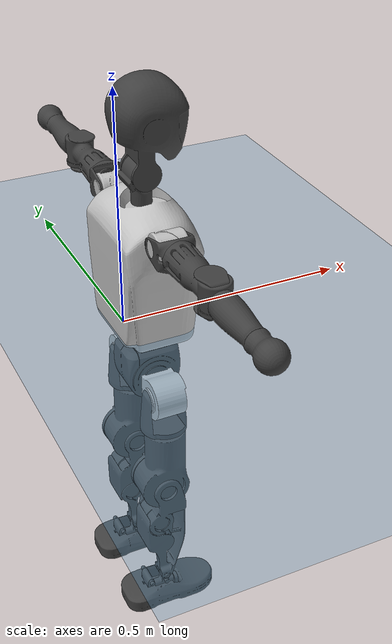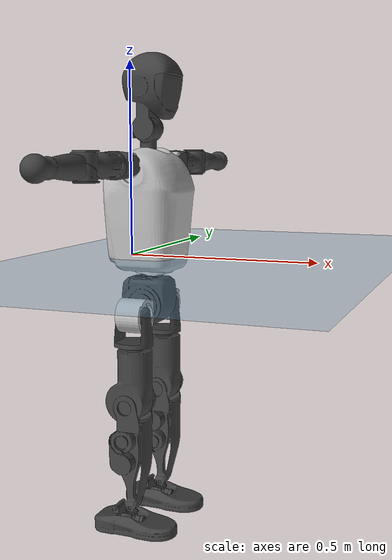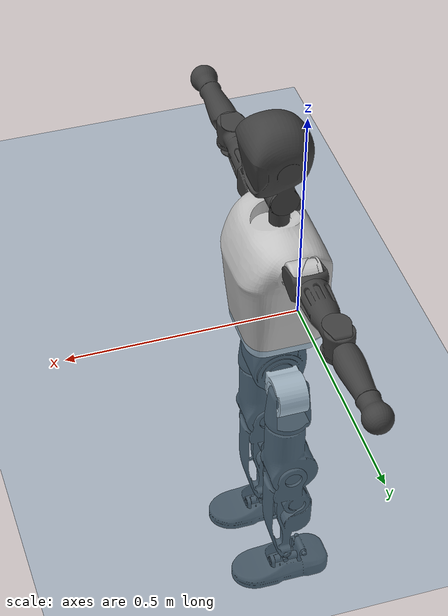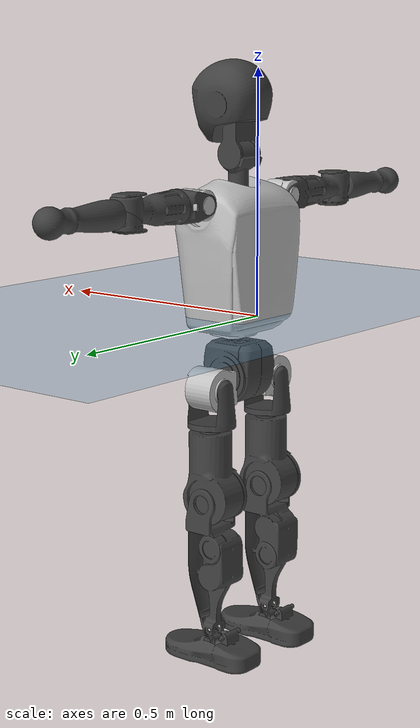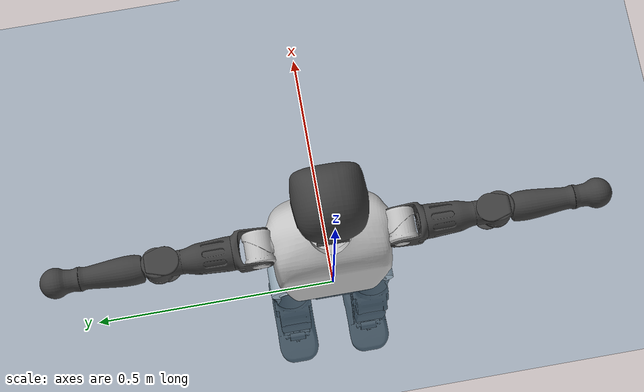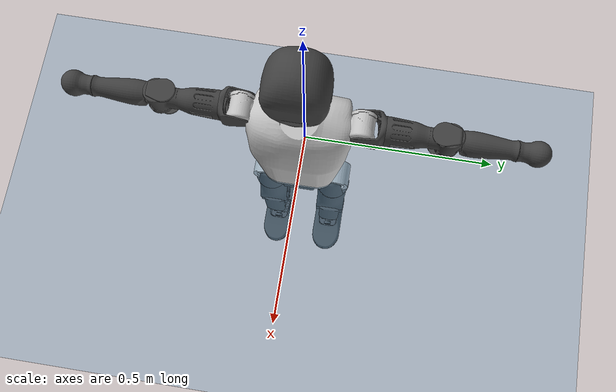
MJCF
<mujoco model="T1">
  <compiler angle="radian" assetdir="assets" balanceinertia="true" inertiafromgeom="false"/>

  <option timestep="0.005" density="1.2" viscosity="2e-05"/>

  <size nkey="1"/>

  <visual>
    <quality shadowsize="8192"/>
    <map shadowclip="0.5"/>
  </visual>

  <default>
    <default class="/">
      <joint armature="0.01" damping="0.01" frictionloss="0.1"/>
      <geom contype="0" conaffinity="0" group="1" solref="-1000 -80"/>
      <site size="0.01 0.005 0.005" group="5"/>
      <general forcelimited="true" biastype="affine" gainprm="25" biasprm="0 -25 -0.6"/>
      <default class="t1">
        <geom rgba="0.25 0.25 0.25 1"/>
        <default class="visual">
          <geom type="mesh" group="2"/>
        </default>
        <default class="collision">
          <geom group="3"/>
        </default>
        <default class="foot">
          <geom size="0.1115 0.05 0.015" type="box" condim="6" group="4" priority="1" solimp="0.015 1 0.015"/>
        </default>
        <default class="reward_collision_sphere">
          <geom group="5" rgba="1 0 0 1"/>
        </default>
      </default>
    </default>
  </default>

  <asset>
    <texture type="skybox" colorspace="auto" name="//unnamed_texture_0" builtin="gradient" rgb1="0.95 0.95 0.95" rgb2="0.95 0.95 0.95" width="100" height="600"/>
    <texture type="2d" colorspace="auto" name="texplane" builtin="checker" rgb1="0.345 0.575 0.748" rgb2="0.345 0.575 0.748" markrgb="1 1 1" width="512" height="512"/>
    <material name="MatPlane" class="/" texture="texplane" texuniform="true" texrepeat="2 2" specular="0.9"/>
    <mesh name="Trunk" class="/" file="Trunk.stl"/>
    <mesh name="H1" class="/" file="H1.stl"/>
    <mesh name="H2" class="/" file="H2.stl"/>
    <mesh name="AL1" class="/" file="AL1.stl"/>
    <mesh name="AL2" class="/" file="AL2.stl"/>
    <mesh name="AL3" class="/" file="AL3.stl"/>
    <mesh name="left_hand_link" class="/" file="left_hand_link.stl"/>
    <mesh name="AR1" class="/" file="AR1.stl"/>
    <mesh name="AR2" class="/" file="AR2.stl"/>
    <mesh name="AR3" class="/" file="AR3.stl"/>
    <mesh name="right_hand_link" class="/" file="right_hand_link.stl"/>
    <mesh name="Waist" class="/" file="Waist.stl"/>
    <mesh name="Hip_Pitch_Left" class="/" file="Hip_Pitch_Left.stl"/>
    <mesh name="Hip_Roll_Left" class="/" file="Hip_Roll_Left.stl"/>
    <mesh name="Hip_Yaw_Left" class="/" file="Hip_Yaw_Left.stl"/>
    <mesh name="Shank_Left" class="/" file="Shank_Left.stl"/>
    <mesh name="Ankle_Cross_Left" class="/" file="Ankle_Cross_Left.stl"/>
    <mesh name="left_foot_link" class="/" file="left_foot_link.stl"/>
    <mesh name="Hip_Pitch_Right" class="/" file="Hip_Pitch_Right.stl"/>
    <mesh name="Hip_Roll_Right" class="/" file="Hip_Roll_Right.stl"/>
    <mesh name="Hip_Yaw_Right" class="/" file="Hip_Yaw_Right.stl"/>
    <mesh name="Shank_Right" class="/" file="Shank_Right.stl"/>
    <mesh name="Ankle_Cross_Right" class="/" file="Ankle_Cross_Right.stl"/>
    <mesh name="right_foot_link" class="/" file="right_foot_link.stl"/>
  </asset>

  <worldbody>
    <geom name="floor" class="/" size="100 100 0.125" type="plane" group="0" material="MatPlane"/>
    <light name="toplight_shadow" class="/" pos="0 0 5" dir="0.0990148 0.0990148 -0.990148" type="directional" ambient="0.04 0.04 0.04" diffuse="0.55 0.55 0.55" specular="0.12 0.12 0.12"/>
    <light name="toplight_fill" class="/" pos="0 0 5" dir="0.0990148 0.0990148 -0.990148" type="directional" castshadow="false" ambient="0.04 0.04 0.04" diffuse="0.3 0.3 0.3" specular="0.08 0.08 0.08"/>
    <body name="trunk" childclass="t1" pos="0.000164343 -4.29829e-05 4.29338e-05" quat="1 -6.05956e-05 -0.000139857 -0.000145123">
      <inertial pos="0.0423763 -0.000904309 0.113592" quat="0.999989 0.000510483 -0.00445542 0.00121013" mass="8.92948" diaginertia="0.0271502 0.0406596 0.0804102"/>
      <joint name="//unnamed_joint_0" type="free" armature="0" damping="0" frictionloss="0"/>
      <geom name="//unnamed_geom_1" class="visual" rgba="0.76 0.76 0.76 1" mesh="Trunk"/>
      <geom name="//unnamed_geom_2" class="collision" size="0.0685843 0.0914457 0.137169" pos="0.0469868 0 0.129532" type="box"/>
      <geom name="//unnamed_geom_3" class="reward_collision_sphere" size="0.105163" pos="0.0469868 0 0.107943"/>
      <geom name="//unnamed_geom_4" class="reward_collision_sphere" size="0.0137169" pos="0.0469868 0.0748705 0"/>
      <geom name="//unnamed_geom_5" class="reward_collision_sphere" size="0.0137169" pos="0.0469868 -0.0748705 0"/>
      <geom name="//unnamed_geom_6" class="reward_collision_sphere" size="0.0137169" pos="0.0469868 0.0942488 0.194297"/>
      <geom name="//unnamed_geom_7" class="reward_collision_sphere" size="0.0137169" pos="0.0469868 -0.0942488 0.194297"/>
      <site name="imu" pos="0.00711361 -0.0031813 -0.00422252" size="0.00914457"/>
      <camera name="track" pos="0 -1.76166 0" quat="0.707107 0.707107 0 0" mode="trackcom"/>
      <camera name="ego_camera" pos="0.0955398 0 0.45336" quat="-0.5 -0.5 0.5 0.5"/>
      <body name="H1" pos="0.0494963 0.000501437 0.261942" quat="1 0.000450621 -0.000227346 1.97057e-05">
        <inertial pos="-0.00152526 -0.00166538 0.0615815" quat="0.763847 -0.0135449 0.0031326 0.645248" mass="0.344524" diaginertia="7.16964e-05 0.000118727 0.000222508"/>
        <joint name="AAHead_yaw" pos="0 0 0" axis="1.54726e-05 5.1138e-05 1" stiffness="0.000546518" range="-1.58611 1.55657" armature="0.00919898" damping="0.0092925" frictionloss="0.0920625"/>
        <geom name="//unnamed_geom_8" class="visual" mesh="H1"/>
        <body name="H2" pos="-0.000498944 -0.00114592 0.0664437" quat="1 0.000133188 2.03329e-05 -5.98573e-05">
          <inertial pos="0.00671849 0.00168261 0.105776" quat="0.988741 0.106233 -0.0730302 -0.0759757" mass="0.48917" diaginertia="0.000592112 0.00102244 0.00250097"/>
          <joint name="Head_pitch" pos="0 0 0" axis="-8.49586e-05 -1 1.14134e-06" range="-1.21854 0.339425" armature="0.0088791" damping="0.00835934" frictionloss="0.0917946"/>
          <geom name="//unnamed_geom_9" class="visual" mesh="H2"/>
          <geom name="//unnamed_geom_10" class="collision" size="0.0731566" pos="0.00783113 0 0.118737"/>
          <geom name="//unnamed_geom_11" class="reward_collision_sphere" size="0.0823012" pos="0.0156623 0 0.107943"/>
        </body>
      </body>
      <body name="AL1" pos="0.0464851 0.0943227 0.237413" quat="1 -0.000175694 0.000636972 -4.51698e-05">
        <inertial pos="-0.00165363 0.0384306 0.00089415" quat="0.502995 0.494713 -0.508249 0.493902" mass="0.404017" diaginertia="0.000399848 0.000685652 0.00042384"/>
        <joint name="Left_Shoulder_Pitch" pos="0 0 0" axis="-3.47089e-05 0.999998 -0.00181193" range="-3.32286 1.23276" armature="0.00931433" damping="0.0107864" frictionloss="0.0918597"/>
        <geom name="//unnamed_geom_12" class="visual" rgba="0.76 0.76 0.76 1" mesh="AL1"/>
        <body name="AL2" pos="0.000256573 0.0433518 1.84285e-06" quat="1 0.000182887 0.000833515 7.4538e-05">
          <inertial pos="0.00171365 0.03372 -8.65137e-05" quat="0.489702 0.510208 -0.488765 0.510871" mass="0.126367" diaginertia="0.000119367 0.000185426 0.000260781"/>
          <joint name="Left_Shoulder_Roll" pos="0 0 0" axis="-0.99999 0.00154997 -0.00421047" range="-1.55989 1.73224" armature="0.00871654" damping="0.00352153" frictionloss="0.0944395"/>
          <geom name="//unnamed_geom_13" class="visual" mesh="AL2"/>
          <body name="AL3" pos="-0.000258924 0.0546586 5.04641e-05" quat="1 0.000583313 -0.000254233 0.000175398">
            <inertial pos="0.000264958 0.0752648 -0.000246733" quat="0.706125 0.708086 0.000626768 0.000907601" mass="0.789913" diaginertia="0.00383392 0.00684886 0.000931696"/>
            <joint name="Left_Elbow_Pitch" pos="0 0 0" axis="-0.00113719 -0.999999 0.000873133" range="-2.25444 2.26358" armature="0.00898535" damping="0.0109594" frictionloss="0.0905574"/>
            <geom name="//unnamed_geom_14" class="visual" mesh="AL3"/>
            <geom name="//unnamed_geom_15" class="collision" size="0.0274337 0.0685843" pos="0 0.0440415 0" quat="0.707105 0.707108 0 0" type="cylinder"/>
            <geom name="//unnamed_geom_16" class="reward_collision_sphere" size="0.0329205"/>
            <body name="left_hand_link" pos="0.000413136 0.131371 0.000179273" quat="1 0.000178221 0.000216002 -0.00041111">
              <inertial pos="-0.000144191 0.0974291 -0.000307858" quat="0.71003 0.70417 0.00147273 0.000451719" mass="0.245315" diaginertia="0.00232715 0.00420791 0.000312355"/>
              <joint name="Left_Elbow_Yaw" pos="0 0 0" axis="0.00110632 -0.00580081 0.999983" range="-2.44784 0.000336301" armature="0.00920735" damping="0.013303" frictionloss="0.0979032"/>
              <geom name="//unnamed_geom_17" class="visual" mesh="left_hand_link"/>
              <geom name="//unnamed_geom_18" class="collision" size="0.0274337 0.080015" pos="0 0.114508 0" quat="0.707105 0.707108 0 0" type="cylinder"/>
              <geom name="//unnamed_geom_19" class="reward_collision_sphere" size="0.0457229"/>
              <geom name="//unnamed_geom_20" class="reward_collision_sphere" size="0.032006" pos="0 0.0968912 0"/>
              <geom name="//unnamed_geom_21" class="reward_collision_sphere" size="0.032006" pos="0 0.189378 0"/>
            </body>
          </body>
        </body>
      </body>
      <body name="AR1" pos="0.044021 -0.0928613 0.236298" quat="1 -2.90064e-05 0.000672484 -2.96347e-05">
        <inertial pos="-0.000745772 -0.0399471 0.00049768" quat="0.504248 0.495678 -0.504296 0.495705" mass="0.398706" diaginertia="0.000399522 0.000682081 0.000428734"/>
        <joint name="Right_Shoulder_Pitch" pos="0 0 0" axis="0.00146756 -0.999975 0.00694776" stiffness="0.00673165" range="-1.20451 3.29874" armature="0.00928087" damping="0.00974757" frictionloss="0.0914318"/>
        <geom name="//unnamed_geom_22" class="visual" rgba="0.76 0.76 0.76 1" mesh="AR1"/>
        <body name="AR2" pos="-0.00147009 -0.040405 -0.000312753" quat="1 0.000328582 -7.3124e-05 -1.89173e-05">
          <inertial pos="0.00369758 -0.0342464 0.000841365" quat="0.511582 0.491577 -0.510069 0.486278" mass="0.121955" diaginertia="0.000115816 0.000177933 0.000256728"/>
          <joint name="Right_Shoulder_Roll" pos="0 0 0" axis="-0.999974 0.00715408 0.000828607" range="-1.75829 1.55116" armature="0.00902141" damping="0.00624335" frictionloss="0.0876199"/>
          <geom name="//unnamed_geom_23" class="visual" mesh="AR2"/>
          <body name="AR3" pos="0.000648577 -0.0520264 0.000249944" quat="1 -5.95509e-06 -8.10472e-05 0.000123112">
            <inertial pos="-0.000232371 -0.0752069 0.000494707" quat="0.702217 0.711961 0.00143768 0.00103869" mass="0.790085" diaginertia="0.00383893 0.00673842 0.000910164"/>
            <joint name="Right_Elbow_Pitch" pos="0 0 0" axis="0.000422674 1 0.000736053" stiffness="0.00181766" range="-2.2728 2.26653" armature="0.00893228" damping="0.00523649" frictionloss="0.0965248"/>
            <geom name="//unnamed_geom_24" class="visual" mesh="AR3"/>
            <geom name="//unnamed_geom_25" class="collision" size="0.0274337 0.0685843" pos="0 -0.0440415 0" quat="0.707105 0.707108 0 0" type="cylinder"/>
            <geom name="//unnamed_geom_26" class="reward_collision_sphere" size="0.0329205"/>
            <body name="right_hand_link" pos="-0.00119244 -0.130207 -0.000798763" quat="1 2.03222e-05 -0.000393847 -7.37745e-05">
              <inertial pos="-0.000103593 -0.0966652 0.00185347" quat="0.706346 0.707855 0.00325133 0.00236024" mass="0.247684" diaginertia="0.00238376 0.00423109 0.000310577"/>
              <joint name="Right_Elbow_Yaw" pos="0 0 0" axis="0.00472681 0.000187567 0.999989" range="-0.00395708 2.44249" armature="0.0098271" damping="0.0070575" frictionloss="0.0919043"/>
              <geom name="//unnamed_geom_27" class="visual" mesh="right_hand_link"/>
              <geom name="//unnamed_geom_28" class="collision" size="0.0274337 0.080015" pos="0 -0.114508 0" quat="0.707105 0.707108 0 0" type="cylinder"/>
              <geom name="//unnamed_geom_29" class="reward_collision_sphere" size="0.0457229"/>
              <geom name="//unnamed_geom_30" class="reward_collision_sphere" size="0.032006" pos="0 -0.0968912 0"/>
              <geom name="//unnamed_geom_31" class="reward_collision_sphere" size="0.032006" pos="0 -0.189378 0"/>
            </body>
          </body>
        </body>
      </body>
      <body name="Waist" pos="0.0490994 -0.00199431 -0.124541" quat="1 9.103e-05 -0.000147185 -7.71448e-05">
        <inertial pos="0.00260501 -0.000637897 0.00822361" quat="0.983441 0.000626227 -0.181219 -0.00173046" mass="1.95737" diaginertia="0.0015799 0.0027701 0.00698615"/>
        <joint name="Waist" pos="0 0 0" axis="0.000633013 0.00174903 0.999998" range="-1.54158 1.55286" armature="0.00895581" damping="0.0117172" frictionloss="0.0896685"/>
        <geom name="//unnamed_geom_32" class="visual" mesh="Waist"/>
        <body name="Hip_Pitch_Left" pos="-0.000361201 0.0933859 0.000256639" quat="1 8.05674e-05 0.000324174 0.000207184">
          <inertial pos="0.00129288 -0.0054017 -0.019659" quat="0.975253 0.220638 0.0140449 0.00155826" mass="0.784314" diaginertia="0.000534984 0.000796016 0.0018567"/>
          <joint name="Left_Hip_Pitch" pos="0 0 0" axis="-0.00120916 0.999998 0.00127716" range="-1.80587 1.55895" armature="0.00919783" damping="0.00510267" frictionloss="0.0914834"/>
          <geom name="//unnamed_geom_33" class="visual" rgba="0.76 0.76 0.76 1" mesh="Hip_Pitch_Left"/>
          <body name="Hip_Roll_Left" pos="-0.000390132 -0.000149921 -0.02092" quat="1 -1.71327e-05 5.51504e-05 1.45629e-05">
            <inertial pos="0.00109444 -9.58139e-06 -0.057529" quat="0.707461 -0.00659199 -0.00498737 0.706704" mass="0.292741" diaginertia="0.000511686 0.000794436 0.000746581"/>
            <joint name="Left_Hip_Roll" pos="0 0 0" axis="-0.999998 0.00161625 -0.00107445" range="-1.57213 0.208045" armature="0.0090696" damping="0.00884924" frictionloss="0.0917017"/>
            <geom name="//unnamed_geom_34" class="visual" mesh="Hip_Roll_Left"/>
            <geom name="//unnamed_geom_35" class="reward_collision_sphere" size="0.0502952"/>
            <body name="Hip_Yaw_Left" pos="0.00160789 -0.00107767 -0.0887007" quat="1 0.000225768 -0.000260047 6.81833e-05">
              <inertial pos="-0.00607052 -0.000378471 -0.0958252" quat="0.698431 -0.0344393 -0.0379803 0.713839" mass="1.67624" diaginertia="0.0076291 0.013169 0.00375537"/>
              <joint name="Left_Hip_Yaw" pos="0 0 0" axis="-0.000175583 0.000128946 -1" range="-1.00901 1.0184" armature="0.00908393" damping="0.0131498" frictionloss="0.0912393"/>
              <geom name="//unnamed_geom_36" class="visual" mesh="Hip_Yaw_Left"/>
              <geom name="//unnamed_geom_37" class="collision" size="0.0457229 0.0731566" type="cylinder"/>
              <body name="Shank_Left" pos="-0.00943412 2.77418e-05 -0.144213" quat="1 -0.000130331 0.000298857 -0.000278392">
                <inertial pos="-0.00429246 -0.000160786 -0.134374" quat="0.997578 0.0014347 -0.0240514 0.0652473" mass="1.30194" diaginertia="0.0102636 0.0180357 0.00270145"/>
                <joint name="Left_Knee_Pitch" pos="0 0 0" axis="0.00204884 0.999987 -0.00459767" range="-0.0147731 2.3442" armature="0.00907327" damping="0.00694431" frictionloss="0.0935817"/>
                <geom name="//unnamed_geom_38" class="visual" mesh="Shank_Left"/>
                <geom name="//unnamed_geom_39" class="collision" size="0.0457229 0.0685843" pos="0 0 -0.129532" type="cylinder"/>
                <geom name="//unnamed_geom_40" class="reward_collision_sphere" size="0.0594397"/>
                <body name="Ankle_Cross_Left" pos="0.000179474 2.33321e-05 -0.302262" quat="1 0.000253961 0.000259674 -0.000256038">
                  <inertial pos="-0.00322967 -0.000734162 -0.0101529" quat="0.44168 0.550678 0.55018 0.446066" mass="0.0567037" diaginertia="8.68194e-06 1.3823e-05 1.69513e-05"/>
                  <joint name="Left_Ankle_Pitch" pos="0 0 0" axis="0.00182251 0.999992 0.00353959" stiffness="0.000188" range="-0.901621 0.332527" armature="0.00957057" damping="0.00376891" frictionloss="0.0942004"/>
                  <geom name="//unnamed_geom_41" class="visual" mesh="Ankle_Cross_Left"/>
                  <body name="left_foot_link" pos="-0.000508673 -0.000213595 -0.0145694" quat="1 1.09628e-05 -7.50169e-05 0.00023693">
                    <inertial pos="0.000349635 -0.000850858 -0.0096427" quat="-0.00150529 0.620437 0.000337896 0.784254" mass="0.531019" diaginertia="0.000791206 0.00126769 0.00319328"/>
                    <joint name="Left_Ankle_Roll" pos="0 0 0" axis="-0.999999 0.000642508 0.00105769" range="-0.42955 0.456832" armature="0.00905761" damping="0.0142397" frictionloss="0.0935169"/>
                    <geom name="//unnamed_geom_42" class="visual" mesh="left_foot_link"/>
                    <geom name="left_foot" class="foot" size="0.0998842 0.0489834 0.0135138" pos="0.00783113 0 -0.0161914"/>
                    <geom name="//unnamed_geom_44" class="reward_collision_sphere" size="0.0475518" pos="0.00783113 0 -0.0161914"/>
                    <geom name="//unnamed_geom_45" class="reward_collision_sphere" size="0.0274337" pos="0.0743957 -0.0202591 -0.0161914"/>
                    <geom name="//unnamed_geom_46" class="reward_collision_sphere" size="0.0274337" pos="-0.0548179 -0.0202591 -0.0161914"/>
                    <site name="left_foot" class="foot" pos="0.00783113 0 -0.0161914" size="0.00914457"/>
                  </body>
                </body>
              </body>
            </body>
          </body>
        </body>
        <body name="Hip_Pitch_Right" pos="-0.000245313 -0.0931735 0.000102667" quat="1 6.82086e-05 2.32382e-05 8.95174e-05">
          <inertial pos="0.000319518 0.00615382 -0.0181835" quat="0.973534 -0.228084 0.0143167 -0.00189732" mass="0.778277" diaginertia="0.000530741 0.000775287 0.00182625"/>
          <joint name="Right_Hip_Pitch" pos="0 0 0" axis="0.000249035 -0.999999 -0.00162201" range="-1.57117 1.80086" armature="0.00928308" damping="0.00895301" frictionloss="0.0874901"/>
          <geom name="//unnamed_geom_47" class="visual" rgba="0.76 0.76 0.76 1" mesh="Hip_Pitch_Right"/>
          <body name="Hip_Roll_Right" pos="-0.00143667 0.000922248 -0.0223755" quat="1 0.000626509 0.000145998 -0.00067049">
            <inertial pos="0.00266354 -0.000534797 -0.0574118" quat="0.70693 -0.00622374 -0.00568245 0.707234" mass="0.295119" diaginertia="0.000517483 0.000805828 0.000754801"/>
            <joint name="Right_Hip_Roll" pos="0 0 0" axis="-0.999998 0.000794887 0.00179804" range="-0.197838 1.57191" armature="0.00930887" damping="0.0092433" frictionloss="0.0916385"/>
            <geom name="//unnamed_geom_48" class="visual" mesh="Hip_Roll_Right"/>
            <geom name="//unnamed_geom_49" class="reward_collision_sphere" size="0.0502952"/>
            <body name="Hip_Yaw_Right" pos="0.000102451 0.000157704 -0.0884244" quat="1 -0.00018146 0.000516885 -0.000317475">
              <inertial pos="-0.00605071 -0.000767131 -0.0968583" quat="0.713945 -0.0288921 -0.0330948 0.698822" mass="1.65835" diaginertia="0.00773288 0.0138169 0.00378967"/>
              <joint name="Right_Hip_Yaw" pos="0 0 0" axis="0.00103433 0.00151332 -0.999998" range="-0.995502 0.975825" armature="0.00920161" damping="0.00865618" frictionloss="0.0875708"/>
              <geom name="//unnamed_geom_50" class="visual" mesh="Hip_Yaw_Right"/>
              <geom name="//unnamed_geom_51" class="collision" size="0.0457229 0.0731566" type="cylinder"/>
              <body name="Shank_Right" pos="-0.0115107 -0.000976827 -0.144405" quat="1 5.85072e-05 -0.00032032 7.0842e-05">
                <inertial pos="-0.00426683 -0.000943918 -0.132826" quat="0.999245 -0.00102513 -0.0247618 -0.0299113" mass="1.38452" diaginertia="0.0103503 0.0182841 0.00286456"/>
                <joint name="Right_Knee_Pitch" pos="0 0 0" axis="-0.00510056 -0.999985 0.00191761" range="-2.33641 -0.00567063" armature="0.0092754" damping="0.0040525" frictionloss="0.0872713"/>
                <geom name="//unnamed_geom_52" class="visual" mesh="Shank_Right"/>
                <geom name="//unnamed_geom_53" class="collision" size="0.0457229 0.0685843" pos="0 0 -0.129532" type="cylinder"/>
                <geom name="//unnamed_geom_54" class="reward_collision_sphere" size="0.0594397"/>
                <body name="Ankle_Cross_Right" pos="0.00148732 -0.00103463 -0.302173" quat="1 0.000200835 -6.06042e-05 -0.000264289">
                  <inertial pos="-0.00286582 0.000587248 -0.00890863" quat="0.439738 0.55375 0.551723 0.442258" mass="0.0556041" diaginertia="8.57716e-06 1.36664e-05 1.65881e-05"/>
                  <joint name="Right_Ankle_Pitch" pos="0 0 0" axis="-0.00203186 -0.99996 0.0086612" range="-0.352278 0.876746" armature="0.00918589" damping="0.0083081" frictionloss="0.0846618"/>
                  <geom name="//unnamed_geom_55" class="visual" mesh="Ankle_Cross_Right"/>
                  <body name="right_foot_link" pos="0.000444124 -0.000114994 -0.0138973" quat="1 0.000268986 -0.000373421 -4.70088e-05">
                    <inertial pos="-0.000161183 0.000473494 -0.0102861" quat="-0.00133472 0.619671 0.00167338 0.784859" mass="0.520615" diaginertia="0.000791276 0.00125879 0.00320897"/>
                    <joint name="Right_Ankle_Roll" pos="0 0 0" axis="-0.999997 0.0016777 0.0019237" stiffness="0.000168388" range="-0.408361 0.420602" armature="0.00922575" damping="0.00864709" frictionloss="0.0928586"/>
                    <geom name="//unnamed_geom_56" class="visual" mesh="right_foot_link"/>
                    <geom name="right_foot" class="foot" size="0.0927875 0.0457231 0.0136757" pos="0.00783113 0 -0.0161914"/>
                    <geom name="//unnamed_geom_58" class="reward_collision_sphere" size="0.0365783"/>
                    <geom name="//unnamed_geom_59" class="reward_collision_sphere" size="0.0274337" pos="0.00783113 0 -0.0161914"/>
                    <geom name="//unnamed_geom_60" class="reward_collision_sphere" size="0.0274337" pos="0.0743957 0.0202591 -0.0161914"/>
                    <geom name="//unnamed_geom_61" class="reward_collision_sphere" size="0.0274337" pos="-0.0548179 0.0202591 -0.0161914"/>
                    <site name="right_foot" class="foot" pos="0.00783113 0 -0.0161914" size="0.00914457"/>
                  </body>
                </body>
              </body>
            </body>
          </body>
        </body>
      </body>
    </body>
  </worldbody>

  <contact>
    <pair class="/" geom1="floor" geom2="left_foot" name="//unnamed_contact_0"/>
    <pair class="/" geom1="floor" geom2="right_foot" name="//unnamed_contact_1"/>
  </contact>

  <actuator>
    <general name="AAHead_yaw" class="/" joint="AAHead_yaw" forcerange="-6.63406 6.63406" gainprm="22.7969" biasprm="0 -22.7969 -0.520564"/>
    <general name="Head_pitch" class="/" joint="Head_pitch" forcerange="-6.52131 6.52131" gainprm="22.7969" biasprm="0 -22.7969 -0.520564"/>
    <general name="Left_Shoulder_Pitch" class="/" joint="Left_Shoulder_Pitch" forcerange="-16.5591 16.5591" gainprm="22.7969" biasprm="0 -22.7969 -0.520564"/>
    <general name="Left_Shoulder_Roll" class="/" joint="Left_Shoulder_Roll" forcerange="-16.2866 16.2866" gainprm="22.7969" biasprm="0 -22.7969 -0.520564"/>
    <general name="Left_Elbow_Pitch" class="/" joint="Left_Elbow_Pitch" forcerange="-16.7278 16.7278" gainprm="22.7969" biasprm="0 -22.7969 -0.520564"/>
    <general name="Left_Elbow_Yaw" class="/" joint="Left_Elbow_Yaw" forcerange="-16.2935 16.2935" gainprm="22.7969" biasprm="0 -22.7969 -0.520564"/>
    <general name="Right_Shoulder_Pitch" class="/" joint="Right_Shoulder_Pitch" forcerange="-16.3444 16.3444" gainprm="22.7969" biasprm="0 -22.7969 -0.520564"/>
    <general name="Right_Shoulder_Roll" class="/" joint="Right_Shoulder_Roll" forcerange="-16.4115 16.4115" gainprm="22.7969" biasprm="0 -22.7969 -0.520564"/>
    <general name="Right_Elbow_Pitch" class="/" joint="Right_Elbow_Pitch" forcerange="-16.653 16.653" gainprm="22.7969" biasprm="0 -22.7969 -0.520564"/>
    <general name="Right_Elbow_Yaw" class="/" joint="Right_Elbow_Yaw" forcerange="-16.6559 16.6559" gainprm="22.7969" biasprm="0 -22.7969 -0.520564"/>
    <general name="Waist" class="/" joint="Waist" forcerange="-26.5912 26.5912" gainprm="22.7969" biasprm="0 -22.7969 -0.520564"/>
    <general name="Left_Hip_Pitch" class="/" joint="Left_Hip_Pitch" forcerange="-38.7278 38.7278" gainprm="22.7969" biasprm="0 -22.7969 -0.520564"/>
    <general name="Left_Hip_Roll" class="/" joint="Left_Hip_Roll" forcerange="-27.6943 27.6943" gainprm="22.7969" biasprm="0 -22.7969 -0.520564"/>
    <general name="Left_Hip_Yaw" class="/" joint="Left_Hip_Yaw" forcerange="-26.9091 26.9091" gainprm="22.7969" biasprm="0 -22.7969 -0.520564"/>
    <general name="Left_Knee_Pitch" class="/" joint="Left_Knee_Pitch" forcerange="-55.4523 55.4523" gainprm="22.7969" biasprm="0 -22.7969 -0.520564"/>
    <general name="Left_Ankle_Pitch" class="/" joint="Left_Ankle_Pitch" forcerange="-18.6031 18.6031" gainprm="22.7969" biasprm="0 -22.7969 -0.520564"/>
    <general name="Left_Ankle_Roll" class="/" joint="Left_Ankle_Roll" forcerange="-13.6782 13.6782" gainprm="22.7969" biasprm="0 -22.7969 -0.520564"/>
    <general name="Right_Hip_Pitch" class="/" joint="Right_Hip_Pitch" forcerange="-42.916 42.916" gainprm="22.7969" biasprm="0 -22.7969 -0.520564"/>
    <general name="Right_Hip_Roll" class="/" joint="Right_Hip_Roll" forcerange="-27.5468 27.5468" gainprm="22.7969" biasprm="0 -22.7969 -0.520564"/>
    <general name="Right_Hip_Yaw" class="/" joint="Right_Hip_Yaw" forcerange="-26.9361 26.9361" gainprm="22.7969" biasprm="0 -22.7969 -0.520564"/>
    <general name="Right_Knee_Pitch" class="/" joint="Right_Knee_Pitch" forcerange="-53.149 53.149" gainprm="22.7969" biasprm="0 -22.7969 -0.520564"/>
    <general name="Right_Ankle_Pitch" class="/" joint="Right_Ankle_Pitch" forcerange="-18.9248 18.9248" gainprm="22.7969" biasprm="0 -22.7969 -0.520564"/>
    <general name="Right_Ankle_Roll" class="/" joint="Right_Ankle_Roll" forcerange="-13.1445 13.1445" gainprm="22.7969" biasprm="0 -22.7969 -0.520564"/>
  </actuator>

  <sensor>
    <gyro site="imu" name="imu_angular_velocity"/>
    <velocimeter site="imu" name="imu_linear_velocity"/>
    <framelinvel objtype="site" objname="left_foot" name="left_foot_global_linear_velocity"/>
    <framelinvel objtype="site" objname="right_foot" name="right_foot_global_linear_velocity"/>
  </sensor>

  <keyframe>
    <key name="home" qpos="0 0 0.6385 1 0 0 0 0 0 0 1.4 0 -0.4 0 -1.4 0 0.4 0 -0.4 0 0 0.8 -0.4 0 0.4 0 0 -0.8 0.4 0"/>
  </keyframe>
</mujoco>
